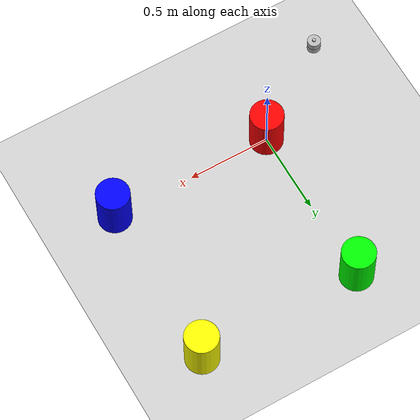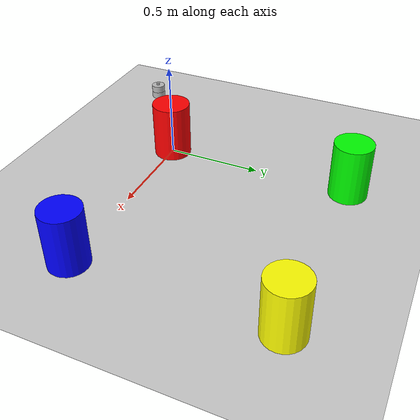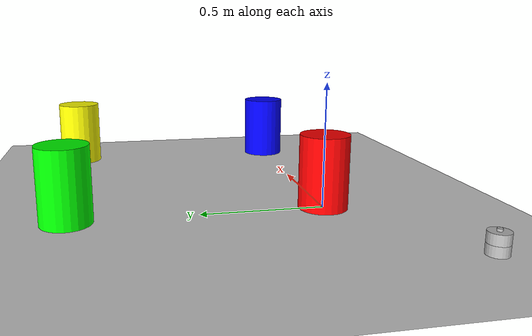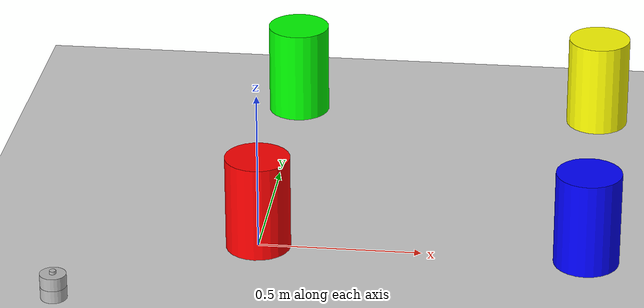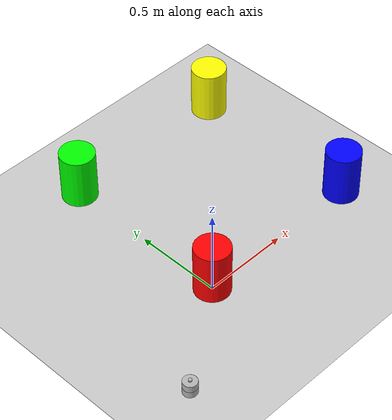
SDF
<sdf version="1.6">
 <world name="default">
  <light name="sun" type="directional">
   <pose>0 0 10 0 -0 0</pose>
   <diffuse>0.8 0.8 0.8 1</diffuse>
   <specular>0.2 0.2 0.2 1</specular>
   <attenuation>
    <range>1000</range>
    <constant>0.9</constant>
    <linear>0.01</linear>
    <quadratic>0.001</quadratic>
   </attenuation>
   <direction>-0.5 0.1 -0.9</direction>
  </light>
  <model name="ground_plane">
   <static>1</static>
   <link name="link">
    <collision name="collision">
     <geometry><plane><normal>0 0 1</normal><size>100 100</size></plane></geometry>
     <surface>
      <contact><collide_bitmask>65535</collide_bitmask></contact>
      <friction><ode><mu>100</mu><mu2>50</mu2></ode></friction>
     </surface>
    </collision>
    <visual name="visual">
     <cast_shadows>0</cast_shadows>
     <geometry><plane><normal>0 0 1</normal><size>100 100</size></plane></geometry>
     <material>
      <script><uri>file://media/materials/scripts/gazebo.material</uri><name>Gazebo/Grey</name></script>
     </material>
    </visual>
   </link>
  </model>
  <gravity>0 0 -9.8</gravity>
  <magnetic_field>6e-06 2.3e-05 -4.2e-05</magnetic_field>
  <atmosphere type="adiabatic"/>
  <physics name="default_physics" default="0" type="ode">
   <max_step_size>0.001</max_step_size>
   <real_time_factor>1</real_time_factor>
   <real_time_update_rate>1000</real_time_update_rate>
  </physics>
  <scene><ambient>0.4 0.4 0.4 1</ambient><background>0.7 0.7 0.7 1</background><shadows>1</shadows></scene>
  <audio><device>default</device></audio>
  <spherical_coordinates>
   <surface_model>EARTH_WGS84</surface_model>
   <latitude_deg>0</latitude_deg>
   <longitude_deg>0</longitude_deg>
   <elevation>0</elevation>
   <heading_deg>0</heading_deg>
  </spherical_coordinates>
  <model name="yellow_cylinder">
   <link name="link_1">
    <inertial>
     <mass>1</mass>
     <inertia><ixx>0.145833</ixx><ixy>0</ixy><ixz>0</ixz><iyy>0.145833</iyy><iyz>0</iyz><izz>0.125</izz></inertia>
    </inertial>
    <visual name="visual">
     <geometry><cylinder><radius>0.1</radius><length>0.3</length></cylinder></geometry>
     <material>
      <lighting>1</lighting>
      <script><uri>file://media/materials/scripts/gazebo.material</uri><name>Gazebo/Grey</name></script>
      <shader type="vertex"><normal_map>__default__</normal_map></shader>
      <ambient>1 1 0 1</ambient>
      <diffuse>1 1 0 1</diffuse>
      <specular>1 1 0 1</specular>
      <emissive>0 0 0 1</emissive>
     </material>
    </visual>
    <collision name="collision">
     <geometry><cylinder><radius>0.1</radius><length>0.3</length></cylinder></geometry>
     <surface>
      <friction>
       <ode><mu>1</mu><mu2>1</mu2><fdir1>0 0 0</fdir1><slip1>0</slip1><slip2>0</slip2></ode>
       <torsional>
        <coefficient>1</coefficient>
        <patch_radius>0</patch_radius>
        <surface_radius>0</surface_radius>
        <use_patch_radius>1</use_patch_radius>
        <ode><slip>0</slip></ode>
       </torsional>
      </friction>
      <bounce><restitution_coefficient>0</restitution_coefficient><threshold>1e+06</threshold></bounce>
      <contact>
       <collide_without_contact>0</collide_without_contact>
       <collide_without_contact_bitmask>1</collide_without_contact_bitmask>
       <collide_bitmask>1</collide_bitmask>
       <ode>
        <soft_cfm>0</soft_cfm>
        <soft_erp>0.2</soft_erp>
        <kp>1e+13</kp>
        <kd>1</kd>
        <max_vel>0.01</max_vel>
        <min_depth>0</min_depth>
       </ode>
       <bullet>
        <split_impulse>1</split_impulse>
        <split_impulse_penetration_threshold>-0.01</split_impulse_penetration_threshold>
        <soft_cfm>0</soft_cfm>
        <soft_erp>0.2</soft_erp>
        <kp>1e+13</kp>
        <kd>1</kd>
       </bullet>
      </contact>
     </surface>
    </collision>
   </link>
   <static>0</static>
   <pose>1 1 0.149996 0 -0 1e-06</pose>
  </model>
  <model name="red_cylinder">
   <link name="link_0">
    <inertial>
     <mass>1</mass>
     <inertia><ixx>0.145833</ixx><ixy>0</ixy><ixz>0</ixz><iyy>0.145833</iyy><iyz>0</iyz><izz>0.125</izz></inertia>
    </inertial>
    <visual name="visual">
     <geometry><cylinder><radius>0.1</radius><length>0.3</length></cylinder></geometry>
     <material>
      <lighting>1</lighting>
      <script><uri>file://media/materials/scripts/gazebo.material</uri><name>Gazebo/Grey</name></script>
      <ambient>1 0 0 0</ambient>
      <shader type="vertex"><normal_map>__default__</normal_map></shader>
      <diffuse>1 0 0 1</diffuse>
      <specular>1 0 0 1</specular>
      <emissive>0 0 0 1</emissive>
     </material>
    </visual>
    <collision name="collision">
     <geometry><cylinder><radius>0.1</radius><length>0.3</length></cylinder></geometry>
     <surface>
      <friction>
       <ode><mu>1</mu><mu2>1</mu2><fdir1>0 0 0</fdir1><slip1>0</slip1><slip2>0</slip2></ode>
       <torsional>
        <coefficient>1</coefficient>
        <patch_radius>0</patch_radius>
        <surface_radius>0</surface_radius>
        <use_patch_radius>1</use_patch_radius>
        <ode><slip>0</slip></ode>
       </torsional>
      </friction>
      <bounce><restitution_coefficient>0</restitution_coefficient><threshold>1e+06</threshold></bounce>
      <contact>
       <collide_without_contact>0</collide_without_contact>
       <collide_without_contact_bitmask>1</collide_without_contact_bitmask>
       <collide_bitmask>1</collide_bitmask>
       <ode>
        <soft_cfm>0</soft_cfm>
        <soft_erp>0.2</soft_erp>
        <kp>1e+13</kp>
        <kd>1</kd>
        <max_vel>0.01</max_vel>
        <min_depth>0</min_depth>
       </ode>
       <bullet>
        <split_impulse>1</split_impulse>
        <split_impulse_penetration_threshold>-0.01</split_impulse_penetration_threshold>
        <soft_cfm>0</soft_cfm>
        <soft_erp>0.2</soft_erp>
        <kp>1e+13</kp>
        <kd>1</kd>
       </bullet>
      </contact>
     </surface>
    </collision>
   </link>
   <static>0</static>
   <pose>0 -0 0.15 0 -0 0</pose>
  </model>
  <model name="blue_cylinder">
   <link name="link_0">
    <inertial>
     <mass>1</mass>
     <inertia><ixx>0.145833</ixx><ixy>0</ixy><ixz>0</ixz><iyy>0.145833</iyy><iyz>0</iyz><izz>0.125</izz></inertia>
    </inertial>
    <visual name="visual">
     <geometry><cylinder><radius>0.1</radius><length>0.3</length></cylinder></geometry>
     <material>
      <lighting>1</lighting>
      <script><uri>file://media/materials/scripts/gazebo.material</uri><name>Gazebo/Grey</name></script>
      <ambient>0 0 1 0</ambient>
      <shader type="vertex"><normal_map>__default__</normal_map></shader>
      <diffuse>0 0 1 1</diffuse>
      <specular>0 0 1 1</specular>
      <emissive>0 0 0 1</emissive>
     </material>
    </visual>
    <collision name="collision">
     <geometry><cylinder><radius>0.1</radius><length>0.3</length></cylinder></geometry>
     <surface>
      <friction>
       <ode><mu>1</mu><mu2>1</mu2><fdir1>0 0 0</fdir1><slip1>0</slip1><slip2>0</slip2></ode>
       <torsional>
        <coefficient>1</coefficient>
        <patch_radius>0</patch_radius>
        <surface_radius>0</surface_radius>
        <use_patch_radius>1</use_patch_radius>
        <ode><slip>0</slip></ode>
       </torsional>
      </friction>
      <bounce><restitution_coefficient>0</restitution_coefficient><threshold>1e+06</threshold></bounce>
      <contact>
       <collide_without_contact>0</collide_without_contact>
       <collide_without_contact_bitmask>1</collide_without_contact_bitmask>
       <collide_bitmask>1</collide_bitmask>
       <ode>
        <soft_cfm>0</soft_cfm>
        <soft_erp>0.2</soft_erp>
        <kp>1e+13</kp>
        <kd>1</kd>
        <max_vel>0.01</max_vel>
        <min_depth>0</min_depth>
       </ode>
       <bullet>
        <split_impulse>1</split_impulse>
        <split_impulse_penetration_threshold>-0.01</split_impulse_penetration_threshold>
        <soft_cfm>0</soft_cfm>
        <soft_erp>0.2</soft_erp>
        <kp>1e+13</kp>
        <kd>1</kd>
       </bullet>
      </contact>
     </surface>
    </collision>
   </link>
   <static>0</static>
   <pose>1 -0 0.15 0 -0 0</pose>
  </model>
  <model name="green_cylinder">
   <link name="link_2">
    <inertial>
     <mass>1</mass>
     <inertia><ixx>0.145833</ixx><ixy>0</ixy><ixz>0</ixz><iyy>0.145833</iyy><iyz>0</iyz><izz>0.125</izz></inertia>
    </inertial>
    <visual name="visual">
     <geometry><cylinder><radius>0.1</radius><length>0.3</length></cylinder></geometry>
     <material>
      <lighting>1</lighting>
      <script><uri>file://media/materials/scripts/gazebo.material</uri><name>Gazebo/Grey</name></script>
      <shader type="vertex"><normal_map>__default__</normal_map></shader>
      <ambient>0 1 0 1</ambient>
      <diffuse>0 1 0 1</diffuse>
      <specular>0 1 0 1</specular>
      <emissive>0 0 0 1</emissive>
     </material>
    </visual>
    <collision name="collision">
     <geometry><cylinder><radius>0.1</radius><length>0.3</length></cylinder></geometry>
     <surface>
      <friction>
       <ode><mu>1</mu><mu2>1</mu2><fdir1>0 0 0</fdir1><slip1>0</slip1><slip2>0</slip2></ode>
       <torsional>
        <coefficient>1</coefficient>
        <patch_radius>0</patch_radius>
        <surface_radius>0</surface_radius>
        <use_patch_radius>1</use_patch_radius>
        <ode><slip>0</slip></ode>
       </torsional>
      </friction>
      <bounce><restitution_coefficient>0</restitution_coefficient><threshold>1e+06</threshold></bounce>
      <contact>
       <collide_without_contact>0</collide_without_contact>
       <collide_without_contact_bitmask>1</collide_without_contact_bitmask>
       <collide_bitmask>1</collide_bitmask>
       <ode>
        <soft_cfm>0</soft_cfm>
        <soft_erp>0.2</soft_erp>
        <kp>1e+13</kp>
        <kd>1</kd>
        <max_vel>0.01</max_vel>
        <min_depth>0</min_depth>
       </ode>
       <bullet>
        <split_impulse>1</split_impulse>
        <split_impulse_penetration_threshold>-0.01</split_impulse_penetration_threshold>
        <soft_cfm>0</soft_cfm>
        <soft_erp>0.2</soft_erp>
        <kp>1e+13</kp>
        <kd>1</kd>
       </bullet>
      </contact>
     </surface>
    </collision>
   </link>
   <static>0</static>
   <pose>0 1 0.15 0 -0 0</pose>
  </model>
  <model name="unicycle">
   <link name="base">
    <pose>0 0 0.02 0 -0 0</pose>
    <inertial>
     <mass>1.2</mass>
     <inertia>
      <ixx>0.00108747</ixx>
      <iyy>0.00108747</iyy>
      <izz>0.00109244</izz>
      <ixy>0</ixy>
      <ixz>0</ixz>
      <iyz>0</iyz>
     </inertia>
    </inertial>
    <collision name="base_collision">
     <geometry><cylinder><radius>0.04</radius><length>0.04</length></cylinder></geometry>
    </collision>
    <visual name="base_visual">
     <geometry><cylinder><radius>0.04</radius><length>0.04</length></cylinder></geometry>
    </visual>
   </link>
   <link name="top">
    <pose>0 0 0.06 0 -0 0</pose>
    <sensor name="sensor" type="ray">
     <pose>0 0 -0.004645 0 -0 0</pose>
     <visualize>1</visualize>
     <update_rate>5</update_rate>
     <ray>
      <noise><type>gaussian</type><mean>0</mean><stddev>0.002</stddev></noise>
      <scan>
       <horizontal>
        <samples>2</samples>
        <resolution>1</resolution>
        <min_angle>0</min_angle>
        <max_angle>1.5708</max_angle>
       </horizontal>
       <vertical><samples>1</samples><min_angle>0</min_angle><max_angle>0</max_angle></vertical>
      </scan>
      <range><min>0.05</min><max>70</max><resolution>0.02</resolution></range>
     </ray>
     <plugin name="gazebo_ros_velodyne_hdl-32-1controller" filename="libgazebo_ros_laser.so">
      <topicName>/velodyne/laser/scan</topicName>
      <frameName>scan_link</frameName>
     </plugin>
    </sensor>
    <inertial>
     <mass>0.1</mass>
     <inertia>
      <ixx>9.0623e-05</ixx>
      <iyy>9.0623e-05</iyy>
      <izz>9.1036e-05</izz>
      <ixy>0</ixy>
      <ixz>0</ixz>
      <iyz>0</iyz>
     </inertia>
    </inertial>
    <collision name="top_collision">
     <geometry><cylinder><radius>0.04</radius><length>0.04</length></cylinder></geometry>
    </collision>
    <visual name="top_visual">
     <geometry><cylinder><radius>0.04</radius><length>0.04</length></cylinder></geometry>
    </visual>
   </link>
   <link name="camera_link">
    <pose>0 0 0.085 0 -0 0</pose>
    <sensor name="camera1" type="camera">
     <pose>0 0 0.025 0 -0 0</pose>
     <update_rate>30</update_rate>
     <camera name="head">
      <image><width>100</width><height>100</height><format>R8G8B8</format></image>
      <clip><near>0.02</near><far>300</far></clip>
      <horizontal_fov>1.047</horizontal_fov>
     </camera>
     <plugin name="camera_controller" filename="libgazebo_ros_camera.so">
      <alwaysOn>1</alwaysOn>
      <updateRate>0.0</updateRate>
      <cameraName>unicycle/camera1</cameraName>
      <imageTopicName>image_raw</imageTopicName>
      <cameraInfoTopicName>camera_info</cameraInfoTopicName>
      <frameName>camera_link</frameName>
      <hackBaseline>0.07</hackBaseline>
      <distortionK1>0.0</distortionK1>
      <distortionK2>0.0</distortionK2>
      <distortionK3>0.0</distortionK3>
      <distortionT1>0.0</distortionT1>
      <distortionT2>0.0</distortionT2>
     </plugin>
    </sensor>
    <inertial>
     <mass>0.1</mass>
     <inertia>
      <ixx>9.0623e-05</ixx>
      <iyy>9.0623e-05</iyy>
      <izz>9.1036e-05</izz>
      <ixy>0</ixy>
      <ixz>0</ixz>
      <iyz>0</iyz>
     </inertia>
    </inertial>
    <collision name="camera_collision">
     <geometry><cylinder><radius>0.01</radius><length>0.01</length></cylinder></geometry>
    </collision>
    <visual name="camera_visual">
     <geometry><cylinder><radius>0.01</radius><length>0.01</length></cylinder></geometry>
    </visual>
   </link>
   <joint name="camera_joint" type="fixed">
    <pose>0 0 -0.03 0 -0 0</pose>
    <parent>top</parent>
    <child>camera_link</child>
    <axis>
     <xyz>0 0 1</xyz>
     <limit><lower>-1e+16</lower><upper>1e+16</upper></limit>
     <use_parent_model_frame>0</use_parent_model_frame>
    </axis>
   </joint>
   <joint name="joint" type="revolute">
    <pose>0 0 -0.036785 0 -0 0</pose>
    <parent>base</parent>
    <child>top</child>
    <axis>
     <xyz>0 0 1</xyz>
     <limit><lower>-1e+16</lower><upper>1e+16</upper></limit>
     <use_parent_model_frame>0</use_parent_model_frame>
     <dynamics><spring_reference>0</spring_reference><spring_stiffness>0</spring_stiffness></dynamics>
    </axis>
   </joint>
   <pose>-0.556098 -0.392689 0 0 -0 0</pose>
  </model>
 </world>
</sdf>
